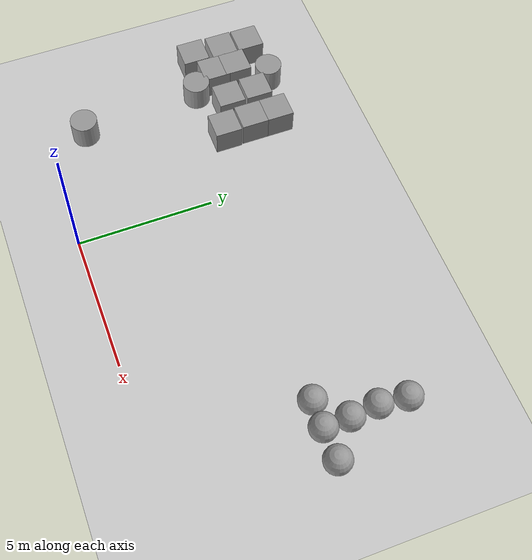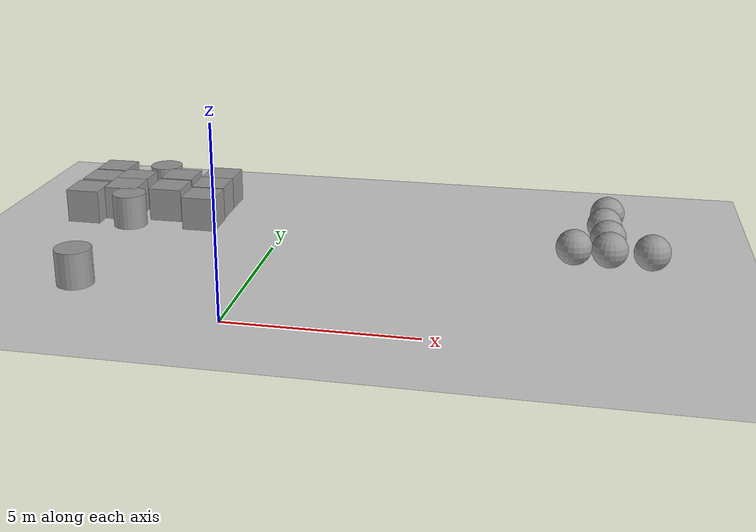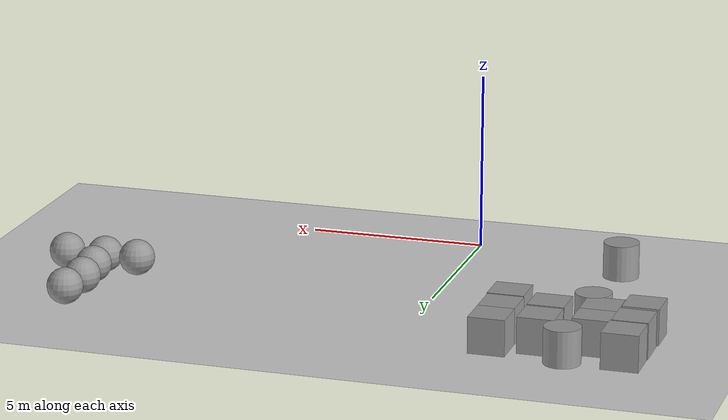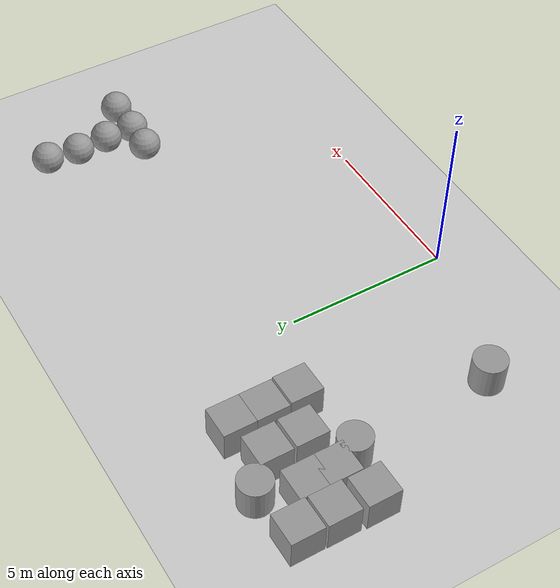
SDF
<sdf version="1.6">
 <world name="default">
  <model name="ground_plane">
   <static>1</static>
   <link name="link">
    <collision name="collision">
     <geometry><plane><normal>0 0 1</normal><size>100 100</size></plane></geometry>
     <surface>
      <contact><collide_bitmask>65535</collide_bitmask></contact>
      <friction><ode><mu>100</mu><mu2>50</mu2></ode></friction>
     </surface>
    </collision>
    <visual name="visual">
     <cast_shadows>0</cast_shadows>
     <geometry><plane><normal>0 0 1</normal><size>100 100</size></plane></geometry>
     <material>
      <script><uri>file://media/materials/scripts/gazebo.material</uri><name>Gazebo/Grey</name></script>
     </material>
    </visual>
   </link>
  </model>
  <model name="usedmap">
   <link name="link_31">
    <inertial>
     <mass>1</mass>
     <inertia>
      <ixx>0.166667</ixx>
      <ixy>0</ixy>
      <ixz>0</ixz>
      <iyy>0.166667</iyy>
      <iyz>0</iyz>
      <izz>0.166667</izz>
     </inertia>
    </inertial>
    <pose>-3.16973 11.4317 0 0 -0 0</pose>
    <visual name="visual">
     <geometry><box><size>1 1 1</size></box></geometry>
     <material>
      <lighting>1</lighting>
      <script><uri>file://media/materials/scripts/gazebo.material</uri><name>Gazebo/Grey</name></script>
     </material>
    </visual>
    <collision name="collision">
     <geometry><box><size>1 1 1</size></box></geometry>
     <surface>
      <friction>
       <ode><mu>1</mu><mu2>1</mu2><fdir1>0 0 0</fdir1><slip1>0</slip1><slip2>0</slip2></ode>
       <torsional>
        <coefficient>1</coefficient>
        <patch_radius>0</patch_radius>
        <surface_radius>0</surface_radius>
        <use_patch_radius>1</use_patch_radius>
        <ode><slip>0</slip></ode>
       </torsional>
      </friction>
      <bounce><restitution_coefficient>0</restitution_coefficient><threshold>1e+06</threshold></bounce>
      <contact>
       <collide_without_contact>0</collide_without_contact>
       <collide_without_contact_bitmask>1</collide_without_contact_bitmask>
       <collide_bitmask>1</collide_bitmask>
       <ode>
        <soft_cfm>0</soft_cfm>
        <soft_erp>0.2</soft_erp>
        <kp>1e+13</kp>
        <kd>1</kd>
        <max_vel>0.01</max_vel>
        <min_depth>0</min_depth>
       </ode>
       <bullet>
        <split_impulse>1</split_impulse>
        <split_impulse_penetration_threshold>-0.01</split_impulse_penetration_threshold>
        <soft_cfm>0</soft_cfm>
        <soft_erp>0.2</soft_erp>
        <kp>1e+13</kp>
        <kd>1</kd>
       </bullet>
      </contact>
     </surface>
    </collision>
   </link>
   <link name="link_32">
    <inertial>
     <mass>1</mass>
     <inertia>
      <ixx>0.166667</ixx>
      <ixy>0</ixy>
      <ixz>0</ixz>
      <iyy>0.166667</iyy>
      <iyz>0</iyz>
      <izz>0.166667</izz>
     </inertia>
    </inertial>
    <pose>-3.16922 10.4337 0 0 -0 0</pose>
    <visual name="visual">
     <geometry><box><size>1 1 1</size></box></geometry>
     <material>
      <lighting>1</lighting>
      <script><uri>file://media/materials/scripts/gazebo.material</uri><name>Gazebo/Grey</name></script>
     </material>
    </visual>
    <collision name="collision">
     <geometry><box><size>1 1 1</size></box></geometry>
     <surface>
      <friction>
       <ode><mu>1</mu><mu2>1</mu2><fdir1>0 0 0</fdir1><slip1>0</slip1><slip2>0</slip2></ode>
       <torsional>
        <coefficient>1</coefficient>
        <patch_radius>0</patch_radius>
        <surface_radius>0</surface_radius>
        <use_patch_radius>1</use_patch_radius>
        <ode><slip>0</slip></ode>
       </torsional>
      </friction>
      <bounce><restitution_coefficient>0</restitution_coefficient><threshold>1e+06</threshold></bounce>
      <contact>
       <collide_without_contact>0</collide_without_contact>
       <collide_without_contact_bitmask>1</collide_without_contact_bitmask>
       <collide_bitmask>1</collide_bitmask>
       <ode>
        <soft_cfm>0</soft_cfm>
        <soft_erp>0.2</soft_erp>
        <kp>1e+13</kp>
        <kd>1</kd>
        <max_vel>0.01</max_vel>
        <min_depth>0</min_depth>
       </ode>
       <bullet>
        <split_impulse>1</split_impulse>
        <split_impulse_penetration_threshold>-0.01</split_impulse_penetration_threshold>
        <soft_cfm>0</soft_cfm>
        <soft_erp>0.2</soft_erp>
        <kp>1e+13</kp>
        <kd>1</kd>
       </bullet>
      </contact>
     </surface>
    </collision>
   </link>
   <link name="link_33">
    <inertial>
     <mass>1</mass>
     <inertia>
      <ixx>0.166667</ixx>
      <ixy>0</ixy>
      <ixz>0</ixz>
      <iyy>0.166667</iyy>
      <iyz>0</iyz>
      <izz>0.166667</izz>
     </inertia>
    </inertial>
    <pose>-3.13325 9.38006 0 0 -0 0</pose>
    <visual name="visual">
     <geometry><box><size>1 1 1</size></box></geometry>
     <material>
      <lighting>1</lighting>
      <script><uri>file://media/materials/scripts/gazebo.material</uri><name>Gazebo/Grey</name></script>
     </material>
    </visual>
    <collision name="collision">
     <geometry><box><size>1 1 1</size></box></geometry>
     <surface>
      <friction>
       <ode><mu>1</mu><mu2>1</mu2><fdir1>0 0 0</fdir1><slip1>0</slip1><slip2>0</slip2></ode>
       <torsional>
        <coefficient>1</coefficient>
        <patch_radius>0</patch_radius>
        <surface_radius>0</surface_radius>
        <use_patch_radius>1</use_patch_radius>
        <ode><slip>0</slip></ode>
       </torsional>
      </friction>
      <bounce><restitution_coefficient>0</restitution_coefficient><threshold>1e+06</threshold></bounce>
      <contact>
       <collide_without_contact>0</collide_without_contact>
       <collide_without_contact_bitmask>1</collide_without_contact_bitmask>
       <collide_bitmask>1</collide_bitmask>
       <ode>
        <soft_cfm>0</soft_cfm>
        <soft_erp>0.2</soft_erp>
        <kp>1e+13</kp>
        <kd>1</kd>
        <max_vel>0.01</max_vel>
        <min_depth>0</min_depth>
       </ode>
       <bullet>
        <split_impulse>1</split_impulse>
        <split_impulse_penetration_threshold>-0.01</split_impulse_penetration_threshold>
        <soft_cfm>0</soft_cfm>
        <soft_erp>0.2</soft_erp>
        <kp>1e+13</kp>
        <kd>1</kd>
       </bullet>
      </contact>
     </surface>
    </collision>
   </link>
   <link name="link_34">
    <inertial>
     <mass>1</mass>
     <inertia>
      <ixx>0.166667</ixx>
      <ixy>0</ixy>
      <ixz>0</ixz>
      <iyy>0.166667</iyy>
      <iyz>0</iyz>
      <izz>0.166667</izz>
     </inertia>
    </inertial>
    <pose>-4.38317 11.0592 0 0 -0 0</pose>
    <visual name="visual">
     <geometry><box><size>1 1 1</size></box></geometry>
     <material>
      <lighting>1</lighting>
      <script><uri>file://media/materials/scripts/gazebo.material</uri><name>Gazebo/Grey</name></script>
     </material>
    </visual>
    <collision name="collision">
     <geometry><box><size>1 1 1</size></box></geometry>
     <surface>
      <friction>
       <ode><mu>1</mu><mu2>1</mu2><fdir1>0 0 0</fdir1><slip1>0</slip1><slip2>0</slip2></ode>
       <torsional>
        <coefficient>1</coefficient>
        <patch_radius>0</patch_radius>
        <surface_radius>0</surface_radius>
        <use_patch_radius>1</use_patch_radius>
        <ode><slip>0</slip></ode>
       </torsional>
      </friction>
      <bounce><restitution_coefficient>0</restitution_coefficient><threshold>1e+06</threshold></bounce>
      <contact>
       <collide_without_contact>0</collide_without_contact>
       <collide_without_contact_bitmask>1</collide_without_contact_bitmask>
       <collide_bitmask>1</collide_bitmask>
       <ode>
        <soft_cfm>0</soft_cfm>
        <soft_erp>0.2</soft_erp>
        <kp>1e+13</kp>
        <kd>1</kd>
        <max_vel>0.01</max_vel>
        <min_depth>0</min_depth>
       </ode>
       <bullet>
        <split_impulse>1</split_impulse>
        <split_impulse_penetration_threshold>-0.01</split_impulse_penetration_threshold>
        <soft_cfm>0</soft_cfm>
        <soft_erp>0.2</soft_erp>
        <kp>1e+13</kp>
        <kd>1</kd>
       </bullet>
      </contact>
     </surface>
    </collision>
   </link>
   <link name="link_35">
    <inertial>
     <mass>1</mass>
     <inertia>
      <ixx>0.166667</ixx>
      <ixy>0</ixy>
      <ixz>0</ixz>
      <iyy>0.166667</iyy>
      <iyz>0</iyz>
      <izz>0.166667</izz>
     </inertia>
    </inertial>
    <pose>-4.3766 9.97897 0 0 -0 0</pose>
    <visual name="visual">
     <geometry><box><size>1 1 1</size></box></geometry>
     <material>
      <lighting>1</lighting>
      <script><uri>file://media/materials/scripts/gazebo.material</uri><name>Gazebo/Grey</name></script>
     </material>
    </visual>
    <collision name="collision">
     <geometry><box><size>1 1 1</size></box></geometry>
     <surface>
      <friction>
       <ode><mu>1</mu><mu2>1</mu2><fdir1>0 0 0</fdir1><slip1>0</slip1><slip2>0</slip2></ode>
       <torsional>
        <coefficient>1</coefficient>
        <patch_radius>0</patch_radius>
        <surface_radius>0</surface_radius>
        <use_patch_radius>1</use_patch_radius>
        <ode><slip>0</slip></ode>
       </torsional>
      </friction>
      <bounce><restitution_coefficient>0</restitution_coefficient><threshold>1e+06</threshold></bounce>
      <contact>
       <collide_without_contact>0</collide_without_contact>
       <collide_without_contact_bitmask>1</collide_without_contact_bitmask>
       <collide_bitmask>1</collide_bitmask>
       <ode>
        <soft_cfm>0</soft_cfm>
        <soft_erp>0.2</soft_erp>
        <kp>1e+13</kp>
        <kd>1</kd>
        <max_vel>0.01</max_vel>
        <min_depth>0</min_depth>
       </ode>
       <bullet>
        <split_impulse>1</split_impulse>
        <split_impulse_penetration_threshold>-0.01</split_impulse_penetration_threshold>
        <soft_cfm>0</soft_cfm>
        <soft_erp>0.2</soft_erp>
        <kp>1e+13</kp>
        <kd>1</kd>
       </bullet>
      </contact>
     </surface>
    </collision>
   </link>
   <link name="link_37">
    <inertial>
     <mass>1</mass>
     <inertia><ixx>0.145833</ixx><ixy>0</ixy><ixz>0</ixz><iyy>0.145833</iyy><iyz>0</iyz><izz>0.125</izz></inertia>
    </inertial>
    <pose>-5.18676 11.8899 0 0 -0 0</pose>
    <visual name="visual">
     <geometry><cylinder><radius>0.5</radius><length>1</length></cylinder></geometry>
     <material>
      <lighting>1</lighting>
      <script><uri>file://media/materials/scripts/gazebo.material</uri><name>Gazebo/Grey</name></script>
     </material>
    </visual>
    <collision name="collision">
     <geometry><cylinder><radius>0.5</radius><length>1</length></cylinder></geometry>
     <surface>
      <friction>
       <ode><mu>1</mu><mu2>1</mu2><fdir1>0 0 0</fdir1><slip1>0</slip1><slip2>0</slip2></ode>
       <torsional>
        <coefficient>1</coefficient>
        <patch_radius>0</patch_radius>
        <surface_radius>0</surface_radius>
        <use_patch_radius>1</use_patch_radius>
        <ode><slip>0</slip></ode>
       </torsional>
      </friction>
      <bounce><restitution_coefficient>0</restitution_coefficient><threshold>1e+06</threshold></bounce>
      <contact>
       <collide_without_contact>0</collide_without_contact>
       <collide_without_contact_bitmask>1</collide_without_contact_bitmask>
       <collide_bitmask>1</collide_bitmask>
       <ode>
        <soft_cfm>0</soft_cfm>
        <soft_erp>0.2</soft_erp>
        <kp>1e+13</kp>
        <kd>1</kd>
        <max_vel>0.01</max_vel>
        <min_depth>0</min_depth>
       </ode>
       <bullet>
        <split_impulse>1</split_impulse>
        <split_impulse_penetration_threshold>-0.01</split_impulse_penetration_threshold>
        <soft_cfm>0</soft_cfm>
        <soft_erp>0.2</soft_erp>
        <kp>1e+13</kp>
        <kd>1</kd>
       </bullet>
      </contact>
     </surface>
    </collision>
   </link>
   <link name="link_38">
    <inertial>
     <mass>1</mass>
     <inertia><ixx>0.145833</ixx><ixy>0</ixy><ixz>0</ixz><iyy>0.145833</iyy><iyz>0</iyz><izz>0.125</izz></inertia>
    </inertial>
    <pose>-5.31888 9.00259 0 0 -0 0</pose>
    <visual name="visual">
     <geometry><cylinder><radius>0.5</radius><length>1</length></cylinder></geometry>
     <material>
      <lighting>1</lighting>
      <script><uri>file://media/materials/scripts/gazebo.material</uri><name>Gazebo/Grey</name></script>
     </material>
    </visual>
    <collision name="collision">
     <geometry><cylinder><radius>0.5</radius><length>1</length></cylinder></geometry>
     <surface>
      <friction>
       <ode><mu>1</mu><mu2>1</mu2><fdir1>0 0 0</fdir1><slip1>0</slip1><slip2>0</slip2></ode>
       <torsional>
        <coefficient>1</coefficient>
        <patch_radius>0</patch_radius>
        <surface_radius>0</surface_radius>
        <use_patch_radius>1</use_patch_radius>
        <ode><slip>0</slip></ode>
       </torsional>
      </friction>
      <bounce><restitution_coefficient>0</restitution_coefficient><threshold>1e+06</threshold></bounce>
      <contact>
       <collide_without_contact>0</collide_without_contact>
       <collide_without_contact_bitmask>1</collide_without_contact_bitmask>
       <collide_bitmask>1</collide_bitmask>
       <ode>
        <soft_cfm>0</soft_cfm>
        <soft_erp>0.2</soft_erp>
        <kp>1e+13</kp>
        <kd>1</kd>
        <max_vel>0.01</max_vel>
        <min_depth>0</min_depth>
       </ode>
       <bullet>
        <split_impulse>1</split_impulse>
        <split_impulse_penetration_threshold>-0.01</split_impulse_penetration_threshold>
        <soft_cfm>0</soft_cfm>
        <soft_erp>0.2</soft_erp>
        <kp>1e+13</kp>
        <kd>1</kd>
       </bullet>
      </contact>
     </surface>
    </collision>
   </link>
   <link name="link_39">
    <inertial>
     <mass>1</mass>
     <inertia>
      <ixx>0.166667</ixx>
      <ixy>0</ixy>
      <ixz>0</ixz>
      <iyy>0.166667</iyy>
      <iyz>0</iyz>
      <izz>0.166667</izz>
     </inertia>
    </inertial>
    <pose>-5.75994 10.7195 0 0 -0 0</pose>
    <visual name="visual">
     <geometry><box><size>1 1 1</size></box></geometry>
     <material>
      <lighting>1</lighting>
      <script><uri>file://media/materials/scripts/gazebo.material</uri><name>Gazebo/Grey</name></script>
     </material>
    </visual>
    <collision name="collision">
     <geometry><box><size>1 1 1</size></box></geometry>
     <surface>
      <friction>
       <ode><mu>1</mu><mu2>1</mu2><fdir1>0 0 0</fdir1><slip1>0</slip1><slip2>0</slip2></ode>
       <torsional>
        <coefficient>1</coefficient>
        <patch_radius>0</patch_radius>
        <surface_radius>0</surface_radius>
        <use_patch_radius>1</use_patch_radius>
        <ode><slip>0</slip></ode>
       </torsional>
      </friction>
      <bounce><restitution_coefficient>0</restitution_coefficient><threshold>1e+06</threshold></bounce>
      <contact>
       <collide_without_contact>0</collide_without_contact>
       <collide_without_contact_bitmask>1</collide_without_contact_bitmask>
       <collide_bitmask>1</collide_bitmask>
       <ode>
        <soft_cfm>0</soft_cfm>
        <soft_erp>0.2</soft_erp>
        <kp>1e+13</kp>
        <kd>1</kd>
        <max_vel>0.01</max_vel>
        <min_depth>0</min_depth>
       </ode>
       <bullet>
        <split_impulse>1</split_impulse>
        <split_impulse_penetration_threshold>-0.01</split_impulse_penetration_threshold>
        <soft_cfm>0</soft_cfm>
        <soft_erp>0.2</soft_erp>
        <kp>1e+13</kp>
        <kd>1</kd>
       </bullet>
      </contact>
     </surface>
    </collision>
   </link>
   <link name="link_40">
    <inertial>
     <mass>1</mass>
     <inertia>
      <ixx>0.166667</ixx>
      <ixy>0</ixy>
      <ixz>0</ixz>
      <iyy>0.166667</iyy>
      <iyz>0</iyz>
      <izz>0.166667</izz>
     </inertia>
    </inertial>
    <pose>-5.75957 9.85647 0 0 -0 0</pose>
    <visual name="visual">
     <geometry><box><size>1 1 1</size></box></geometry>
     <material>
      <lighting>1</lighting>
      <script><uri>file://media/materials/scripts/gazebo.material</uri><name>Gazebo/Grey</name></script>
     </material>
    </visual>
    <collision name="collision">
     <geometry><box><size>1 1 1</size></box></geometry>
     <surface>
      <friction>
       <ode><mu>1</mu><mu2>1</mu2><fdir1>0 0 0</fdir1><slip1>0</slip1><slip2>0</slip2></ode>
       <torsional>
        <coefficient>1</coefficient>
        <patch_radius>0</patch_radius>
        <surface_radius>0</surface_radius>
        <use_patch_radius>1</use_patch_radius>
        <ode><slip>0</slip></ode>
       </torsional>
      </friction>
      <bounce><restitution_coefficient>0</restitution_coefficient><threshold>1e+06</threshold></bounce>
      <contact>
       <collide_without_contact>0</collide_without_contact>
       <collide_without_contact_bitmask>1</collide_without_contact_bitmask>
       <collide_bitmask>1</collide_bitmask>
       <ode>
        <soft_cfm>0</soft_cfm>
        <soft_erp>0.2</soft_erp>
        <kp>1e+13</kp>
        <kd>1</kd>
        <max_vel>0.01</max_vel>
        <min_depth>0</min_depth>
       </ode>
       <bullet>
        <split_impulse>1</split_impulse>
        <split_impulse_penetration_threshold>-0.01</split_impulse_penetration_threshold>
        <soft_cfm>0</soft_cfm>
        <soft_erp>0.2</soft_erp>
        <kp>1e+13</kp>
        <kd>1</kd>
       </bullet>
      </contact>
     </surface>
    </collision>
   </link>
   <link name="link_41">
    <inertial>
     <mass>1</mass>
     <inertia>
      <ixx>0.166667</ixx>
      <ixy>0</ixy>
      <ixz>0</ixz>
      <iyy>0.166667</iyy>
      <iyz>0</iyz>
      <izz>0.166667</izz>
     </inertia>
    </inertial>
    <pose>-6.72975 11.5823 0 0 -0 0</pose>
    <visual name="visual">
     <geometry><box><size>1 1 1</size></box></geometry>
     <material>
      <lighting>1</lighting>
      <script><uri>file://media/materials/scripts/gazebo.material</uri><name>Gazebo/Grey</name></script>
     </material>
    </visual>
    <collision name="collision">
     <geometry><box><size>1 1 1</size></box></geometry>
     <surface>
      <friction>
       <ode><mu>1</mu><mu2>1</mu2><fdir1>0 0 0</fdir1><slip1>0</slip1><slip2>0</slip2></ode>
       <torsional>
        <coefficient>1</coefficient>
        <patch_radius>0</patch_radius>
        <surface_radius>0</surface_radius>
        <use_patch_radius>1</use_patch_radius>
        <ode><slip>0</slip></ode>
       </torsional>
      </friction>
      <bounce><restitution_coefficient>0</restitution_coefficient><threshold>1e+06</threshold></bounce>
      <contact>
       <collide_without_contact>0</collide_without_contact>
       <collide_without_contact_bitmask>1</collide_without_contact_bitmask>
       <collide_bitmask>1</collide_bitmask>
       <ode>
        <soft_cfm>0</soft_cfm>
        <soft_erp>0.2</soft_erp>
        <kp>1e+13</kp>
        <kd>1</kd>
        <max_vel>0.01</max_vel>
        <min_depth>0</min_depth>
       </ode>
       <bullet>
        <split_impulse>1</split_impulse>
        <split_impulse_penetration_threshold>-0.01</split_impulse_penetration_threshold>
        <soft_cfm>0</soft_cfm>
        <soft_erp>0.2</soft_erp>
        <kp>1e+13</kp>
        <kd>1</kd>
       </bullet>
      </contact>
     </surface>
    </collision>
   </link>
   <link name="link_42">
    <inertial>
     <mass>1</mass>
     <inertia>
      <ixx>0.166667</ixx>
      <ixy>0</ixy>
      <ixz>0</ixz>
      <iyy>0.166667</iyy>
      <iyz>0</iyz>
      <izz>0.166667</izz>
     </inertia>
    </inertial>
    <pose>-6.7446 10.5255 0 0 -0 0</pose>
    <visual name="visual">
     <geometry><box><size>1 1 1</size></box></geometry>
     <material>
      <lighting>1</lighting>
      <script><uri>file://media/materials/scripts/gazebo.material</uri><name>Gazebo/Grey</name></script>
     </material>
    </visual>
    <collision name="collision">
     <geometry><box><size>1 1 1</size></box></geometry>
     <surface>
      <friction>
       <ode><mu>1</mu><mu2>1</mu2><fdir1>0 0 0</fdir1><slip1>0</slip1><slip2>0</slip2></ode>
       <torsional>
        <coefficient>1</coefficient>
        <patch_radius>0</patch_radius>
        <surface_radius>0</surface_radius>
        <use_patch_radius>1</use_patch_radius>
        <ode><slip>0</slip></ode>
       </torsional>
      </friction>
      <bounce><restitution_coefficient>0</restitution_coefficient><threshold>1e+06</threshold></bounce>
      <contact>
       <collide_without_contact>0</collide_without_contact>
       <collide_without_contact_bitmask>1</collide_without_contact_bitmask>
       <collide_bitmask>1</collide_bitmask>
       <ode>
        <soft_cfm>0</soft_cfm>
        <soft_erp>0.2</soft_erp>
        <kp>1e+13</kp>
        <kd>1</kd>
        <max_vel>0.01</max_vel>
        <min_depth>0</min_depth>
       </ode>
       <bullet>
        <split_impulse>1</split_impulse>
        <split_impulse_penetration_threshold>-0.01</split_impulse_penetration_threshold>
        <soft_cfm>0</soft_cfm>
        <soft_erp>0.2</soft_erp>
        <kp>1e+13</kp>
        <kd>1</kd>
       </bullet>
      </contact>
     </surface>
    </collision>
   </link>
   <link name="link_43">
    <inertial>
     <mass>1</mass>
     <inertia>
      <ixx>0.166667</ixx>
      <ixy>0</ixy>
      <ixz>0</ixz>
      <iyy>0.166667</iyy>
      <iyz>0</iyz>
      <izz>0.166667</izz>
     </inertia>
    </inertial>
    <pose>-6.77869 9.37711 0 0 -0 0</pose>
    <visual name="visual">
     <geometry><box><size>1 1 1</size></box></geometry>
     <material>
      <lighting>1</lighting>
      <script><uri>file://media/materials/scripts/gazebo.material</uri><name>Gazebo/Grey</name></script>
     </material>
    </visual>
    <collision name="collision">
     <geometry><box><size>1 1 1</size></box></geometry>
     <surface>
      <friction>
       <ode><mu>1</mu><mu2>1</mu2><fdir1>0 0 0</fdir1><slip1>0</slip1><slip2>0</slip2></ode>
       <torsional>
        <coefficient>1</coefficient>
        <patch_radius>0</patch_radius>
        <surface_radius>0</surface_radius>
        <use_patch_radius>1</use_patch_radius>
        <ode><slip>0</slip></ode>
       </torsional>
      </friction>
      <bounce><restitution_coefficient>0</restitution_coefficient><threshold>1e+06</threshold></bounce>
      <contact>
       <collide_without_contact>0</collide_without_contact>
       <collide_without_contact_bitmask>1</collide_without_contact_bitmask>
       <collide_bitmask>1</collide_bitmask>
       <ode>
        <soft_cfm>0</soft_cfm>
        <soft_erp>0.2</soft_erp>
        <kp>1e+13</kp>
        <kd>1</kd>
        <max_vel>0.01</max_vel>
        <min_depth>0</min_depth>
       </ode>
       <bullet>
        <split_impulse>1</split_impulse>
        <split_impulse_penetration_threshold>-0.01</split_impulse_penetration_threshold>
        <soft_cfm>0</soft_cfm>
        <soft_erp>0.2</soft_erp>
        <kp>1e+13</kp>
        <kd>1</kd>
       </bullet>
      </contact>
     </surface>
    </collision>
   </link>
   <link name="link_44">
    <inertial>
     <mass>1</mass>
     <inertia><ixx>0.1</ixx><ixy>0</ixy><ixz>0</ixz><iyy>0.1</iyy><iyz>0</iyz><izz>0.1</izz></inertia>
    </inertial>
    <pose>8.70386 10.3019 0 0 -0 0</pose>
    <visual name="visual">
     <geometry><sphere><radius>0.5</radius></sphere></geometry>
     <material>
      <lighting>1</lighting>
      <script><uri>file://media/materials/scripts/gazebo.material</uri><name>Gazebo/Grey</name></script>
     </material>
    </visual>
    <collision name="collision">
     <geometry><sphere><radius>0.5</radius></sphere></geometry>
     <surface>
      <friction>
       <ode><mu>1</mu><mu2>1</mu2><fdir1>0 0 0</fdir1><slip1>0</slip1><slip2>0</slip2></ode>
       <torsional>
        <coefficient>1</coefficient>
        <patch_radius>0</patch_radius>
        <surface_radius>0</surface_radius>
        <use_patch_radius>1</use_patch_radius>
        <ode><slip>0</slip></ode>
       </torsional>
      </friction>
      <bounce><restitution_coefficient>0</restitution_coefficient><threshold>1e+06</threshold></bounce>
      <contact>
       <collide_without_contact>0</collide_without_contact>
       <collide_without_contact_bitmask>1</collide_without_contact_bitmask>
       <collide_bitmask>1</collide_bitmask>
       <ode>
        <soft_cfm>0</soft_cfm>
        <soft_erp>0.2</soft_erp>
        <kp>1e+13</kp>
        <kd>1</kd>
        <max_vel>0.01</max_vel>
        <min_depth>0</min_depth>
       </ode>
       <bullet>
        <split_impulse>1</split_impulse>
        <split_impulse_penetration_threshold>-0.01</split_impulse_penetration_threshold>
        <soft_cfm>0</soft_cfm>
        <soft_erp>0.2</soft_erp>
        <kp>1e+13</kp>
        <kd>1</kd>
       </bullet>
      </contact>
     </surface>
    </collision>
   </link>
   <link name="link_45">
    <inertial>
     <mass>1</mass>
     <inertia><ixx>0.1</ixx><ixy>0</ixy><ixz>0</ixz><iyy>0.1</iyy><iyz>0</iyz><izz>0.1</izz></inertia>
    </inertial>
    <pose>8.78795 9.28789 0 0 -0 0</pose>
    <visual name="visual">
     <geometry><sphere><radius>0.5</radius></sphere></geometry>
     <material>
      <lighting>1</lighting>
      <script><uri>file://media/materials/scripts/gazebo.material</uri><name>Gazebo/Grey</name></script>
     </material>
    </visual>
    <collision name="collision">
     <geometry><sphere><radius>0.5</radius></sphere></geometry>
     <surface>
      <friction>
       <ode><mu>1</mu><mu2>1</mu2><fdir1>0 0 0</fdir1><slip1>0</slip1><slip2>0</slip2></ode>
       <torsional>
        <coefficient>1</coefficient>
        <patch_radius>0</patch_radius>
        <surface_radius>0</surface_radius>
        <use_patch_radius>1</use_patch_radius>
        <ode><slip>0</slip></ode>
       </torsional>
      </friction>
      <bounce><restitution_coefficient>0</restitution_coefficient><threshold>1e+06</threshold></bounce>
      <contact>
       <collide_without_contact>0</collide_without_contact>
       <collide_without_contact_bitmask>1</collide_without_contact_bitmask>
       <collide_bitmask>1</collide_bitmask>
       <ode>
        <soft_cfm>0</soft_cfm>
        <soft_erp>0.2</soft_erp>
        <kp>1e+13</kp>
        <kd>1</kd>
        <max_vel>0.01</max_vel>
        <min_depth>0</min_depth>
       </ode>
       <bullet>
        <split_impulse>1</split_impulse>
        <split_impulse_penetration_threshold>-0.01</split_impulse_penetration_threshold>
        <soft_cfm>0</soft_cfm>
        <soft_erp>0.2</soft_erp>
        <kp>1e+13</kp>
        <kd>1</kd>
       </bullet>
      </contact>
     </surface>
    </collision>
   </link>
   <link name="link_46">
    <inertial>
     <mass>1</mass>
     <inertia><ixx>0.1</ixx><ixy>0</ixy><ixz>0</ixz><iyy>0.1</iyy><iyz>0</iyz><izz>0.1</izz></inertia>
    </inertial>
    <pose>8.80066 11.3193 0 0 -0 0</pose>
    <visual name="visual">
     <geometry><sphere><radius>0.5</radius></sphere></geometry>
     <material>
      <lighting>1</lighting>
      <script><uri>file://media/materials/scripts/gazebo.material</uri><name>Gazebo/Grey</name></script>
     </material>
    </visual>
    <collision name="collision">
     <geometry><sphere><radius>0.5</radius></sphere></geometry>
     <surface>
      <friction>
       <ode><mu>1</mu><mu2>1</mu2><fdir1>0 0 0</fdir1><slip1>0</slip1><slip2>0</slip2></ode>
       <torsional>
        <coefficient>1</coefficient>
        <patch_radius>0</patch_radius>
        <surface_radius>0</surface_radius>
        <use_patch_radius>1</use_patch_radius>
        <ode><slip>0</slip></ode>
       </torsional>
      </friction>
      <bounce><restitution_coefficient>0</restitution_coefficient><threshold>1e+06</threshold></bounce>
      <contact>
       <collide_without_contact>0</collide_without_contact>
       <collide_without_contact_bitmask>1</collide_without_contact_bitmask>
       <collide_bitmask>1</collide_bitmask>
       <ode>
        <soft_cfm>0</soft_cfm>
        <soft_erp>0.2</soft_erp>
        <kp>1e+13</kp>
        <kd>1</kd>
        <max_vel>0.01</max_vel>
        <min_depth>0</min_depth>
       </ode>
       <bullet>
        <split_impulse>1</split_impulse>
        <split_impulse_penetration_threshold>-0.01</split_impulse_penetration_threshold>
        <soft_cfm>0</soft_cfm>
        <soft_erp>0.2</soft_erp>
        <kp>1e+13</kp>
        <kd>1</kd>
       </bullet>
      </contact>
     </surface>
    </collision>
   </link>
   <link name="link_47">
    <inertial>
     <mass>1</mass>
     <inertia><ixx>0.1</ixx><ixy>0</ixy><ixz>0</ixz><iyy>0.1</iyy><iyz>0</iyz><izz>0.1</izz></inertia>
    </inertial>
    <pose>8.81782 8.34675 0 0 -0 0</pose>
    <visual name="visual">
     <geometry><sphere><radius>0.5</radius></sphere></geometry>
     <material>
      <lighting>1</lighting>
      <script><uri>file://media/materials/scripts/gazebo.material</uri><name>Gazebo/Grey</name></script>
     </material>
    </visual>
    <collision name="collision">
     <geometry><sphere><radius>0.5</radius></sphere></geometry>
     <surface>
      <friction>
       <ode><mu>1</mu><mu2>1</mu2><fdir1>0 0 0</fdir1><slip1>0</slip1><slip2>0</slip2></ode>
       <torsional>
        <coefficient>1</coefficient>
        <patch_radius>0</patch_radius>
        <surface_radius>0</surface_radius>
        <use_patch_radius>1</use_patch_radius>
        <ode><slip>0</slip></ode>
       </torsional>
      </friction>
      <bounce><restitution_coefficient>0</restitution_coefficient><threshold>1e+06</threshold></bounce>
      <contact>
       <collide_without_contact>0</collide_without_contact>
       <collide_without_contact_bitmask>1</collide_without_contact_bitmask>
       <collide_bitmask>1</collide_bitmask>
       <ode>
        <soft_cfm>0</soft_cfm>
        <soft_erp>0.2</soft_erp>
        <kp>1e+13</kp>
        <kd>1</kd>
        <max_vel>0.01</max_vel>
        <min_depth>0</min_depth>
       </ode>
       <bullet>
        <split_impulse>1</split_impulse>
        <split_impulse_penetration_threshold>-0.01</split_impulse_penetration_threshold>
        <soft_cfm>0</soft_cfm>
        <soft_erp>0.2</soft_erp>
        <kp>1e+13</kp>
        <kd>1</kd>
       </bullet>
      </contact>
     </surface>
    </collision>
   </link>
   <link name="link_48">
    <inertial>
     <mass>1</mass>
     <inertia><ixx>0.1</ixx><ixy>0</ixy><ixz>0</ixz><iyy>0.1</iyy><iyz>0</iyz><izz>0.1</izz></inertia>
    </inertial>
    <pose>7.85439 8.37375 0 0 -0 0</pose>
    <visual name="visual">
     <geometry><sphere><radius>0.5</radius></sphere></geometry>
     <material>
      <lighting>1</lighting>
      <script><uri>file://media/materials/scripts/gazebo.material</uri><name>Gazebo/Grey</name></script>
     </material>
    </visual>
    <collision name="collision">
     <geometry><sphere><radius>0.5</radius></sphere></geometry>
     <surface>
      <friction>
       <ode><mu>1</mu><mu2>1</mu2><fdir1>0 0 0</fdir1><slip1>0</slip1><slip2>0</slip2></ode>
       <torsional>
        <coefficient>1</coefficient>
        <patch_radius>0</patch_radius>
        <surface_radius>0</surface_radius>
        <use_patch_radius>1</use_patch_radius>
        <ode><slip>0</slip></ode>
       </torsional>
      </friction>
      <bounce><restitution_coefficient>0</restitution_coefficient><threshold>1e+06</threshold></bounce>
      <contact>
       <collide_without_contact>0</collide_without_contact>
       <collide_without_contact_bitmask>1</collide_without_contact_bitmask>
       <collide_bitmask>1</collide_bitmask>
       <ode>
        <soft_cfm>0</soft_cfm>
        <soft_erp>0.2</soft_erp>
        <kp>1e+13</kp>
        <kd>1</kd>
        <max_vel>0.01</max_vel>
        <min_depth>0</min_depth>
       </ode>
       <bullet>
        <split_impulse>1</split_impulse>
        <split_impulse_penetration_threshold>-0.01</split_impulse_penetration_threshold>
        <soft_cfm>0</soft_cfm>
        <soft_erp>0.2</soft_erp>
        <kp>1e+13</kp>
        <kd>1</kd>
       </bullet>
      </contact>
     </surface>
    </collision>
   </link>
   <link name="link_49">
    <inertial>
     <mass>1</mass>
     <inertia><ixx>0.1</ixx><ixy>0</ixy><ixz>0</ixz><iyy>0.1</iyy><iyz>0</iyz><izz>0.1</izz></inertia>
    </inertial>
    <pose>9.94617 8.36157 0 0 -0 0</pose>
    <visual name="visual">
     <geometry><sphere><radius>0.5</radius></sphere></geometry>
     <material>
      <lighting>1</lighting>
      <script><uri>file://media/materials/scripts/gazebo.material</uri><name>Gazebo/Grey</name></script>
     </material>
    </visual>
    <collision name="collision">
     <geometry><sphere><radius>0.5</radius></sphere></geometry>
     <surface>
      <friction>
       <ode><mu>1</mu><mu2>1</mu2><fdir1>0 0 0</fdir1><slip1>0</slip1><slip2>0</slip2></ode>
       <torsional>
        <coefficient>1</coefficient>
        <patch_radius>0</patch_radius>
        <surface_radius>0</surface_radius>
        <use_patch_radius>1</use_patch_radius>
        <ode><slip>0</slip></ode>
       </torsional>
      </friction>
      <bounce><restitution_coefficient>0</restitution_coefficient><threshold>1e+06</threshold></bounce>
      <contact>
       <collide_without_contact>0</collide_without_contact>
       <collide_without_contact_bitmask>1</collide_without_contact_bitmask>
       <collide_bitmask>1</collide_bitmask>
       <ode>
        <soft_cfm>0</soft_cfm>
        <soft_erp>0.2</soft_erp>
        <kp>1e+13</kp>
        <kd>1</kd>
        <max_vel>0.01</max_vel>
        <min_depth>0</min_depth>
       </ode>
       <bullet>
        <split_impulse>1</split_impulse>
        <split_impulse_penetration_threshold>-0.01</split_impulse_penetration_threshold>
        <soft_cfm>0</soft_cfm>
        <soft_erp>0.2</soft_erp>
        <kp>1e+13</kp>
        <kd>1</kd>
       </bullet>
      </contact>
     </surface>
    </collision>
   </link>
   <link name="link_53">
    <inertial>
     <mass>1</mass>
     <inertia><ixx>0.145833</ixx><ixy>0</ixy><ixz>0</ixz><iyy>0.145833</iyy><iyz>0</iyz><izz>0.125</izz></inertia>
    </inertial>
    <pose>-5.04306 4.48328 0 0 -0 0</pose>
    <visual name="visual">
     <geometry><cylinder><radius>0.5</radius><length>1</length></cylinder></geometry>
     <material>
      <lighting>1</lighting>
      <script><uri>file://media/materials/scripts/gazebo.material</uri><name>Gazebo/Grey</name></script>
     </material>
    </visual>
    <collision name="collision">
     <geometry><cylinder><radius>0.5</radius><length>1</length></cylinder></geometry>
     <surface>
      <friction>
       <ode><mu>1</mu><mu2>1</mu2><fdir1>0 0 0</fdir1><slip1>0</slip1><slip2>0</slip2></ode>
       <torsional>
        <coefficient>1</coefficient>
        <patch_radius>0</patch_radius>
        <surface_radius>0</surface_radius>
        <use_patch_radius>1</use_patch_radius>
        <ode><slip>0</slip></ode>
       </torsional>
      </friction>
      <bounce><restitution_coefficient>0</restitution_coefficient><threshold>1e+06</threshold></bounce>
      <contact>
       <collide_without_contact>0</collide_without_contact>
       <collide_without_contact_bitmask>1</collide_without_contact_bitmask>
       <collide_bitmask>1</collide_bitmask>
       <ode>
        <soft_cfm>0</soft_cfm>
        <soft_erp>0.2</soft_erp>
        <kp>1e+13</kp>
        <kd>1</kd>
        <max_vel>0.01</max_vel>
        <min_depth>0</min_depth>
       </ode>
       <bullet>
        <split_impulse>1</split_impulse>
        <split_impulse_penetration_threshold>-0.01</split_impulse_penetration_threshold>
        <soft_cfm>0</soft_cfm>
        <soft_erp>0.2</soft_erp>
        <kp>1e+13</kp>
        <kd>1</kd>
       </bullet>
      </contact>
     </surface>
    </collision>
   </link>
   <static>0</static>
   <pose>0.585943 -2.92529 0.5 0 -0 0</pose>
  </model>
 </world>
</sdf>
